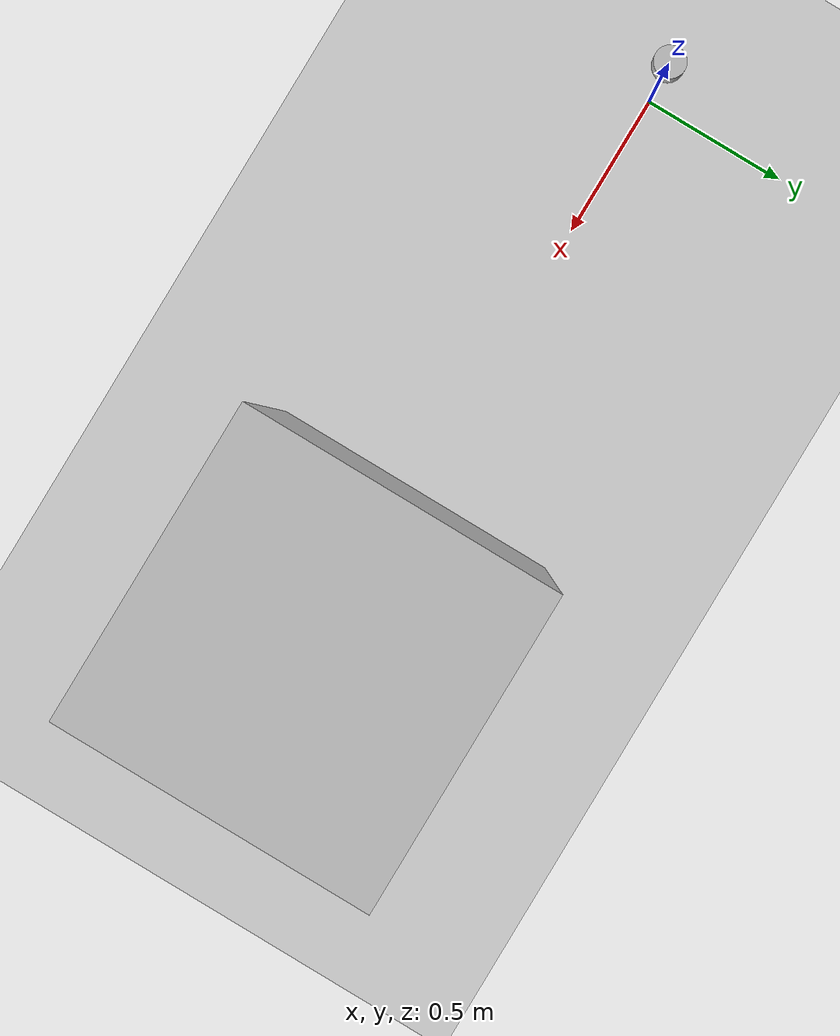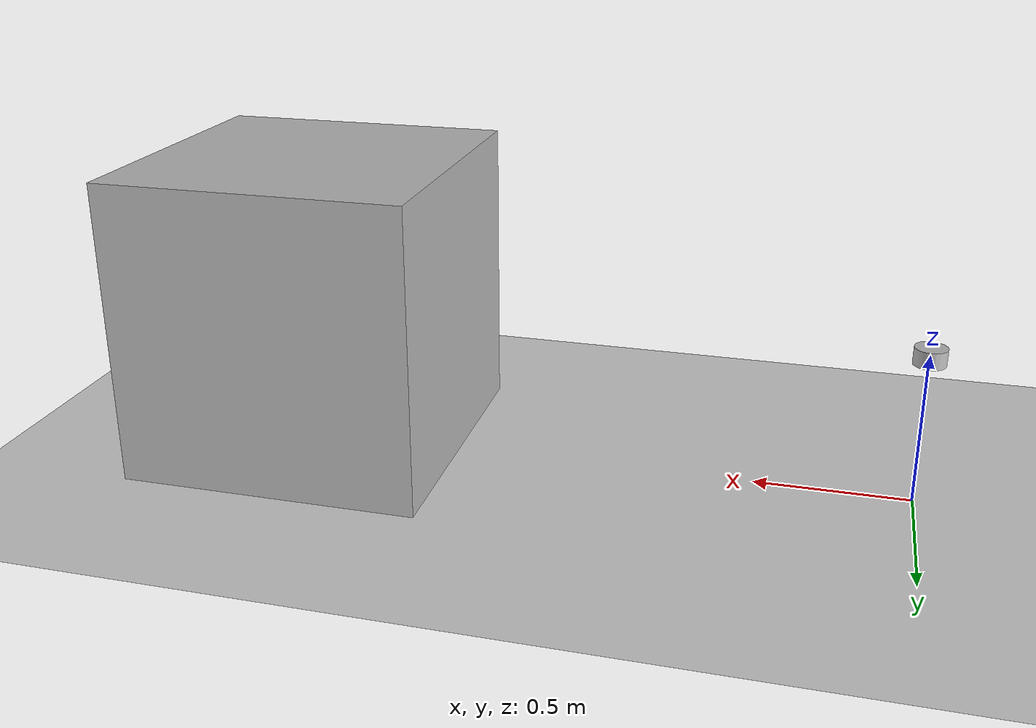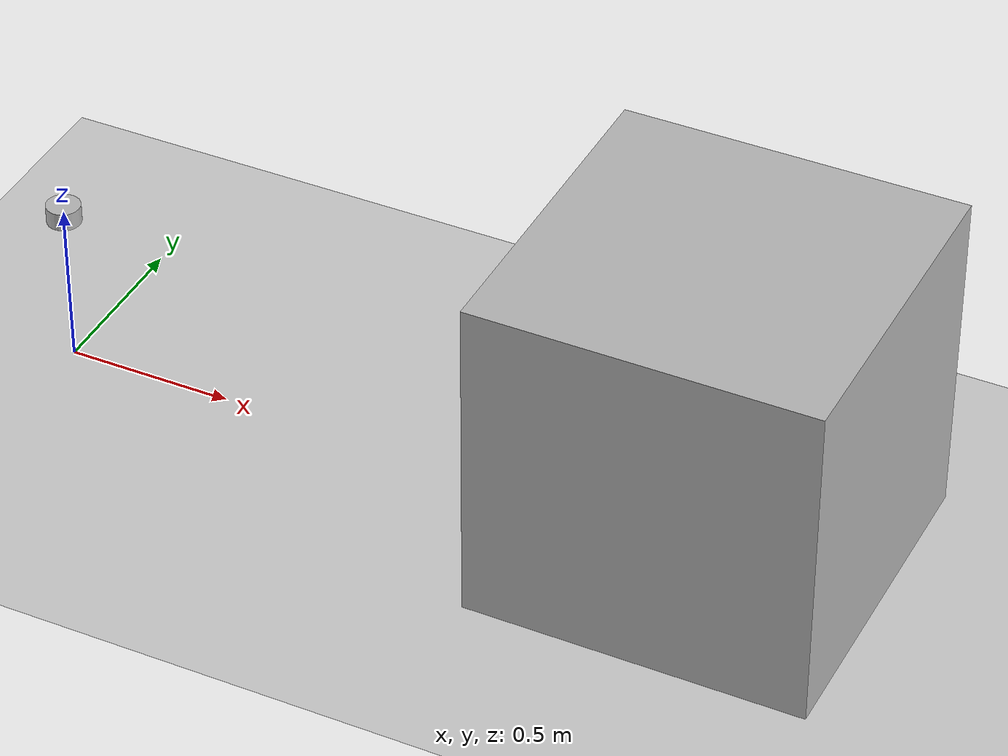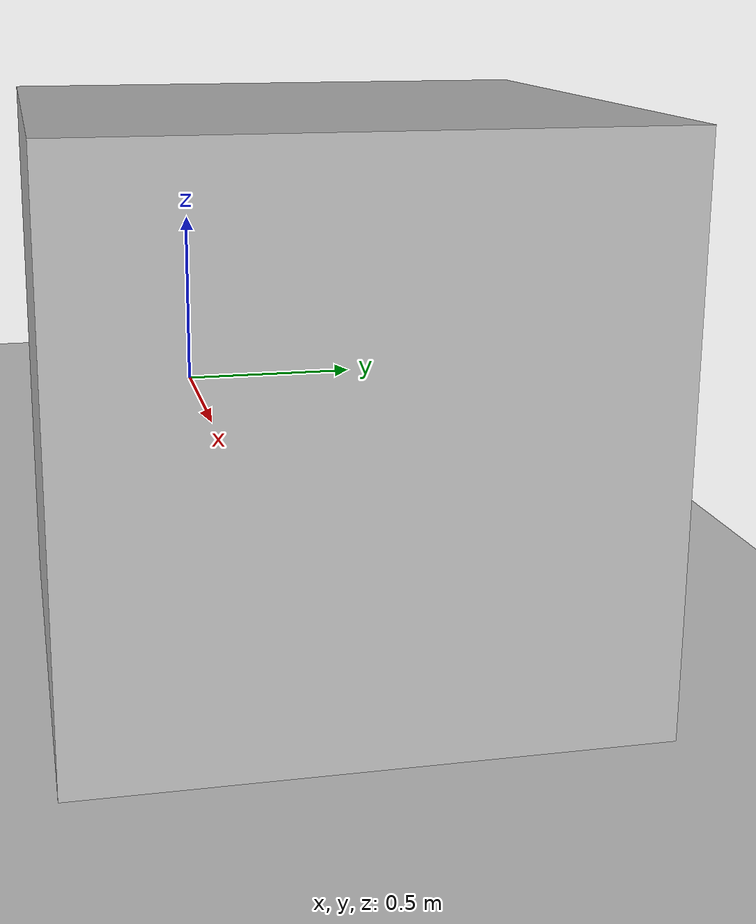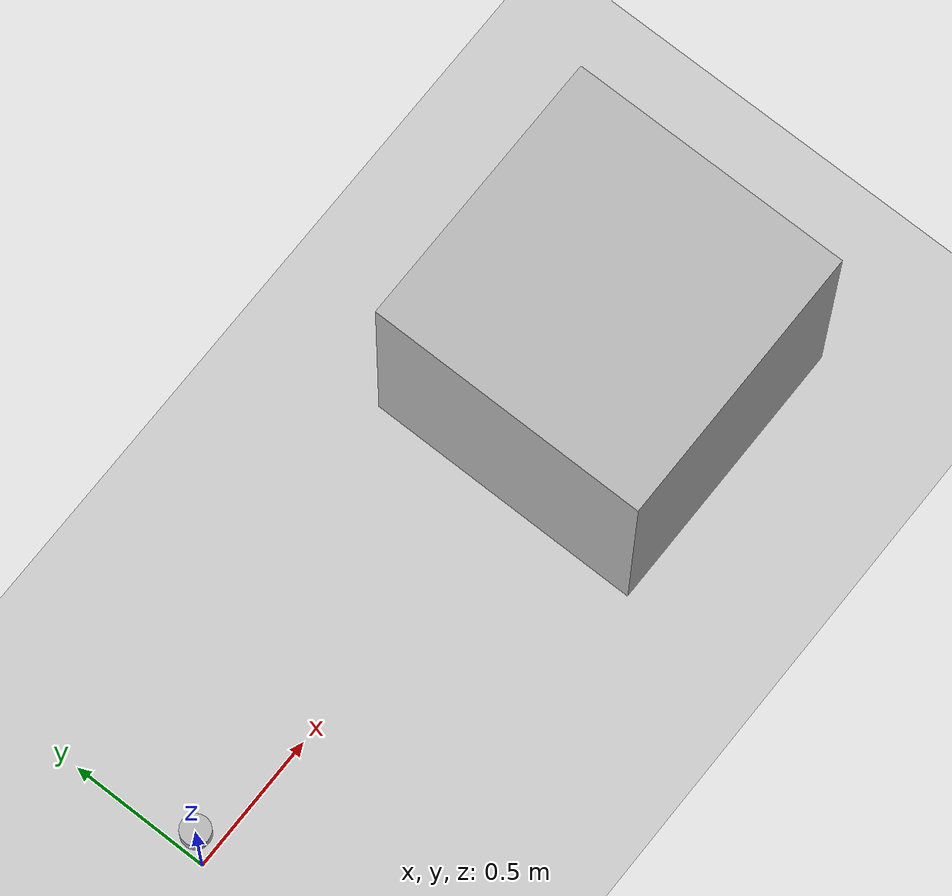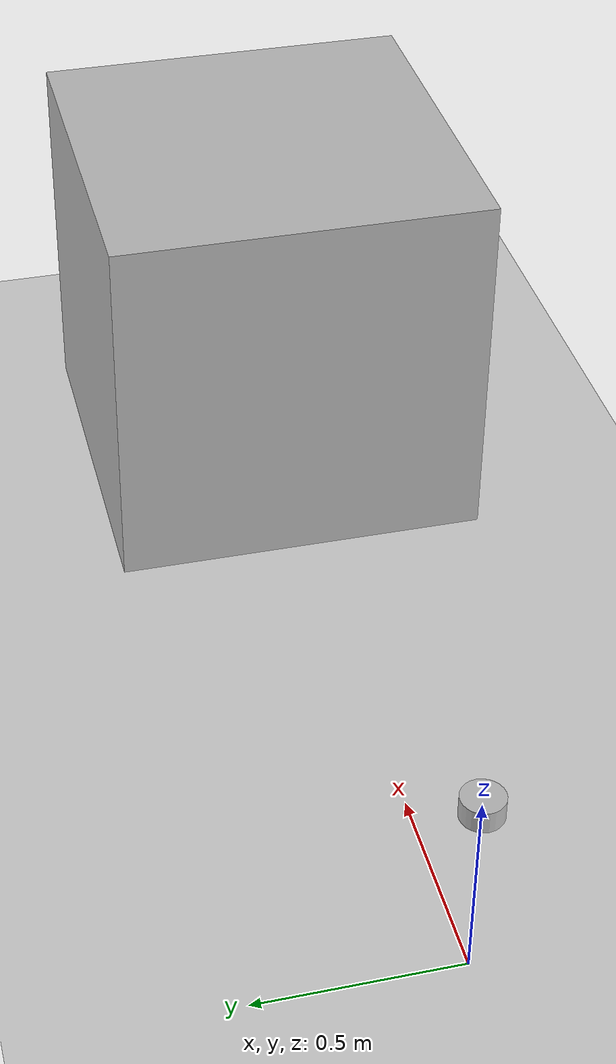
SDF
<?xml version="1.0" ?>
<sdf version="1.6">
  <world name="default">
    <!-- A ground plane -->
    <include>
      <uri>model://ground_plane</uri>
    </include>

    <!-- A simple box for the LiDAR to scan -->
    <model name="box">
      <pose>2 0 0.5 0 0 0</pose>
      <link name="link">
        <visual name="visual">
          <geometry>
            <box>
              <size>1 1 1</size>
            </box>
          </geometry>
        </visual>
        <collision name="collision">
          <geometry>
            <box>
              <size>1 1 1</size>
            </box>
          </geometry>
        </collision>
      </link>
    </model>

    <!-- The LiDAR sensor mounted on a vehicle -->
    <model name="velodyne_sensor">
      <pose>0 0 0.5 0 0 0</pose>
      <link name="lidar_link">
        <gravity>0</gravity>
        <inertial>
          <pose>0 0 0 0 0 0 0</pose>
          <inertia>
            <ixx>0.001</ixx>
            <ixy>0.000</ixy>
            <ixz>0.000</ixz>
            <iyy>0.001</iyy>
            <iyz>0.000</iyz>
            <izz>0.001</izz>
          </inertia>
          <mass>0.114</mass>
        </inertial>

        <collision name="lidar_sensor_collision">
          <pose>0 0 0 0 0 0 0</pose>
          <geometry>
            <cylinder>
              <radius>0.0508</radius>
              <length>0.055</length>
            </cylinder>
          </geometry>
        </collision>

        <visual name="lidar_sensor_visual">

          <pose>0 0 0 0 0 0 0</pose>
          <geometry>
            <cylinder>
              <radius>0.0508</radius>
              <length>0.055</length>
            </cylinder>
          </geometry>
        </visual>
        <sensor name="gpu_lidar" type="gpu_ray">
          <always_on>true</always_on>
          <visualize>false</visualize>
          <pose>0 0 0 0 0 0</pose>          <!-- Position the sensor relative to the model -->
          <update_rate>10</update_rate>          <!-- LiDAR update rate in Hz -->
          <ray>
            <scan>
              <horizontal>
                <samples>1024</samples>                <!-- Horizontal resolution -->
                <resolution>1</resolution>                <!-- Step resolution -->
                <min_angle>-3.14159</min_angle>                <!-- -180 degrees -->
                <max_angle>3.14159</max_angle>                <!-- 180 degrees -->
              </horizontal>
              <vertical>
                <samples>16</samples>                <!-- 16 vertical beams (VLP-16) -->
                <min_angle>-0.261799</min_angle>                <!-- -15 degrees -->
                <max_angle>0.261799</max_angle>                <!-- 15 degrees -->
              </vertical>
            </scan>
            <range>
              <min>0.1</min>              <!-- Minimum range in meters -->
              <max>100.0</max>              <!-- Maximum range in meters -->
              <resolution>0.01</resolution>              <!-- Distance resolution -->
            </range>
            <noise>
              <type>gaussian</type>
              <mean>0.0</mean>
              <stddev>0.01</stddev>              <!-- Standard deviation for noise -->
            </noise>
          </ray>
          <plugin name="gazebo_ros_velodyne_laser2" filename="libgazebo_ros_velodyne_laser2.so">
            <ros>
              <remapping>~/out:=scan</remapping>
            </ros>
            <min_range>0.1</min_range>
            <max_range>100.0</max_range>
            <min_intensity>0 </min_intensity>
            <gaussian_noise>0.01</gaussian_noise>
            <organize_cloud>false</organize_cloud>
          </plugin>

        </sensor>
      </link>
    </model>

    <!-- Light source -->
    <include>
      <uri>model://sun</uri>
    </include>
  </world>
</sdf>
